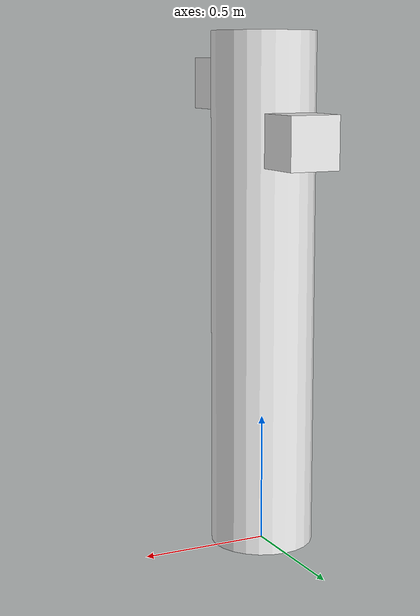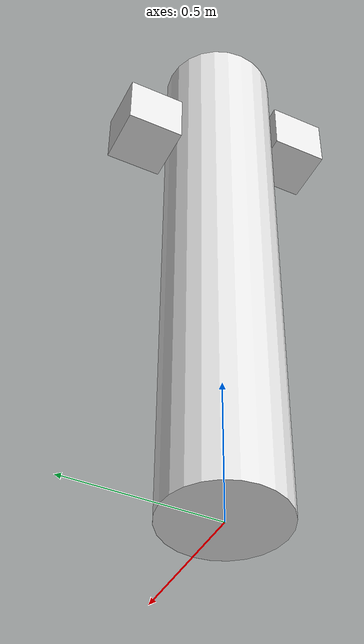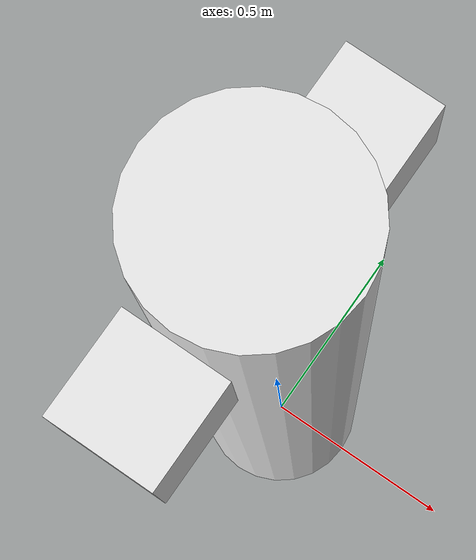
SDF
<?xml version="1.0" ?>
<sdf version="1.4">
  <model name="Tower">
    <static>true</static>

    <link name="tower">
    <pose>0 0 1 0 0 0</pose>
      <collision name="collision">
        <geometry>
          <cylinder>
           	<radius>0.2</radius>
           	<length>2</length>
          </cylinder>
        </geometry>
       </collision>
      <visual name="visual">
        <geometry>
          <cylinder>
            	<radius>0.2</radius>
           	<length>2</length>
          </cylinder>
        </geometry>
        <material>
          <script>
            <uri>file://media/materials/scripts/gazebo.material
            </uri>
            <name>Gazebo/White</name>
          </script>
        </material>
      </visual>
    </link>

    <link name="box_left">
      <pose> 0 -0.3 1.8 0 0 0 </pose>
      <collision name="collision">
        <geometry>
          <box>
            <size> 0.2 0.2 0.2</size>
          </box>
        </geometry>
      </collision>
      <visual name="visual">
        <geometry>
          <box>
            <size> 0.2 0.2 0.2</size>
          </box>
        </geometry>
        <material>
           <script>
               <uri>file://media/materials/scripts/gazebo.material </uri>
            <name>Gazebo/White</name>
          </script>
        </material>

      </visual>
    </link>

    <link name="box_right">
      <pose> 0 0.3 1.6 0 0 0 </pose>
      <collision name="collision">
        <geometry>
          <box>
            <size> 0.2 0.2 0.2</size>
          </box>
        </geometry>
      </collision>
      <visual name="visual">
        <geometry>
          <box>
            <size> 0.2 0.2 0.2</size>
          </box>
        </geometry>
        <material>
          <script>
              <uri>file://media/materials/scripts/gazebo.material</uri>
            <name>Gazebo/White</name>
          </script>
        </material>
      </visual>
    </link>

  </model>
</sdf>
